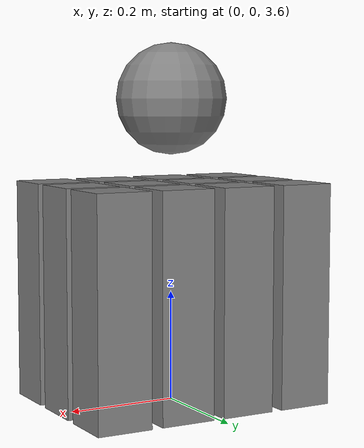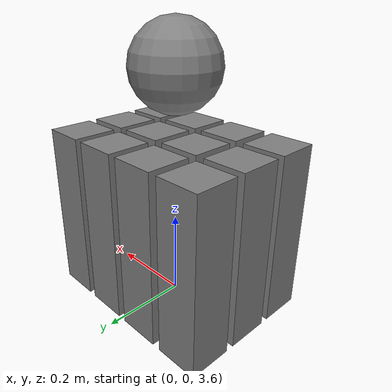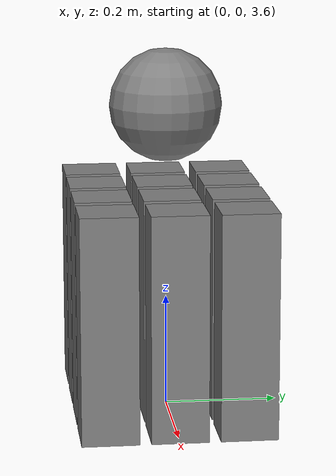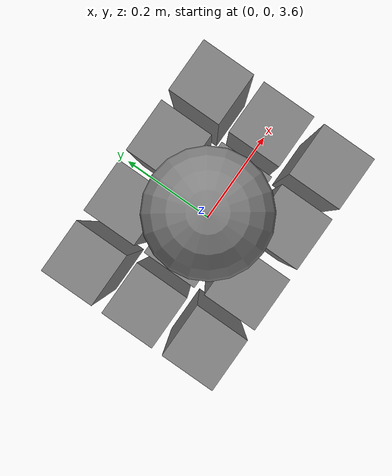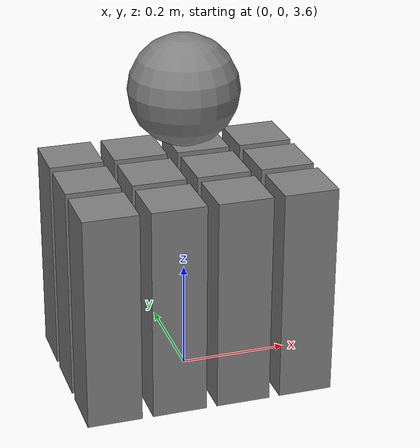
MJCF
<?xml version="1.0"?>
<mujoco model="envs/linear_actuator_array/xmls/linear_actuator_array-v0.xml">
  <option timestep="0.002" />
  <default>
    <joint limited='true' />
  </default>
  <worldbody>
    <light name="light0" directional="true" diffuse=".3 .3 .3" pos="-1 -1 1" dir="1 1 -1" />
    <light name="light1" directional="true" diffuse=".3 .3 .3" pos="1 -1 1" dir="-1 1 -1" />
    <light name="light2" directional="true" diffuse=".3 .3 .3" pos="0 1 1" dir="0 -1 -1" />
    <body name="object0" pos="0.0 0.0 4.15">
      <freejoint name="object0_joint" />
      <geom name="object0_geom" type="sphere" size="0.1" />
    </body>
    <geom name="floor" pos="0 0 0" size="5.0 5.0 .1" type="plane" condim="3" />
    <body name="palm" pos="0 0 4.0">
      <body name="module0" pos="-0.18 -0.12 0">
        <geom name="module0_geom" type="box" size="0.05" fromto="0 0 0 0 0 -0.4" />
        <joint name="module0_joint" type="slide" pos="0 0 0" axis="0 0 1" range="0 0.01" damping="10000" />
      </body>
      <body name="module1" pos="-0.18 0.0 0">
        <geom name="module1_geom" type="box" size="0.05" fromto="0 0 0 0 0 -0.4" />
        <joint name="module1_joint" type="slide" pos="0 0 0" axis="0 0 1" range="0 0.01" damping="10000" />
      </body>
      <body name="module2" pos="-0.18 0.12 0">
        <geom name="module2_geom" type="box" size="0.05" fromto="0 0 0 0 0 -0.4" />
        <joint name="module2_joint" type="slide" pos="0 0 0" axis="0 0 1" range="0 0.01" damping="10000" />
      </body>
      <body name="module3" pos="-0.06 -0.12 0">
        <geom name="module3_geom" type="box" size="0.05" fromto="0 0 0 0 0 -0.4" />
        <joint name="module3_joint" type="slide" pos="0 0 0" axis="0 0 1" range="0 0.01" damping="10000" />
      </body>
      <body name="module4" pos="-0.06 0.0 0">
        <geom name="module4_geom" type="box" size="0.05" fromto="0 0 0 0 0 -0.4" />
        <joint name="module4_joint" type="slide" pos="0 0 0" axis="0 0 1" range="0 0.01" damping="10000" />
      </body>
      <body name="module5" pos="-0.06 0.12 0">
        <geom name="module5_geom" type="box" size="0.05" fromto="0 0 0 0 0 -0.4" />
        <joint name="module5_joint" type="slide" pos="0 0 0" axis="0 0 1" range="0 0.01" damping="10000" />
      </body>
      <body name="module6" pos="0.06 -0.12 0">
        <geom name="module6_geom" type="box" size="0.05" fromto="0 0 0 0 0 -0.4" />
        <joint name="module6_joint" type="slide" pos="0 0 0" axis="0 0 1" range="0 0.01" damping="10000" />
      </body>
      <body name="module7" pos="0.06 0.0 0">
        <geom name="module7_geom" type="box" size="0.05" fromto="0 0 0 0 0 -0.4" />
        <joint name="module7_joint" type="slide" pos="0 0 0" axis="0 0 1" range="0 0.01" damping="10000" />
      </body>
      <body name="module8" pos="0.06 0.12 0">
        <geom name="module8_geom" type="box" size="0.05" fromto="0 0 0 0 0 -0.4" />
        <joint name="module8_joint" type="slide" pos="0 0 0" axis="0 0 1" range="0 0.01" damping="10000" />
      </body>
      <body name="module9" pos="0.18 -0.12 0">
        <geom name="module9_geom" type="box" size="0.05" fromto="0 0 0 0 0 -0.4" />
        <joint name="module9_joint" type="slide" pos="0 0 0" axis="0 0 1" range="0 0.01" damping="10000" />
      </body>
      <body name="module10" pos="0.18 0.0 0">
        <geom name="module10_geom" type="box" size="0.05" fromto="0 0 0 0 0 -0.4" />
        <joint name="module10_joint" type="slide" pos="0 0 0" axis="0 0 1" range="0 0.01" damping="10000" />
      </body>
      <body name="module11" pos="0.18 0.12 0">
        <geom name="module11_geom" type="box" size="0.05" fromto="0 0 0 0 0 -0.4" />
        <joint name="module11_joint" type="slide" pos="0 0 0" axis="0 0 1" range="0 0.01" damping="10000" />
      </body>
    </body>
  </worldbody>
  <actuator>
    <motor name="motor0" ctrllimited="true" ctrlrange="-1.0 1.0" gear="20000" joint="module0_joint" />
    <motor name="motor1" ctrllimited="true" ctrlrange="-1.0 1.0" gear="20000" joint="module1_joint" />
    <motor name="motor2" ctrllimited="true" ctrlrange="-1.0 1.0" gear="20000" joint="module2_joint" />
    <motor name="motor3" ctrllimited="true" ctrlrange="-1.0 1.0" gear="20000" joint="module3_joint" />
    <motor name="motor4" ctrllimited="true" ctrlrange="-1.0 1.0" gear="20000" joint="module4_joint" />
    <motor name="motor5" ctrllimited="true" ctrlrange="-1.0 1.0" gear="20000" joint="module5_joint" />
    <motor name="motor6" ctrllimited="true" ctrlrange="-1.0 1.0" gear="20000" joint="module6_joint" />
    <motor name="motor7" ctrllimited="true" ctrlrange="-1.0 1.0" gear="20000" joint="module7_joint" />
    <motor name="motor8" ctrllimited="true" ctrlrange="-1.0 1.0" gear="20000" joint="module8_joint" />
    <motor name="motor9" ctrllimited="true" ctrlrange="-1.0 1.0" gear="20000" joint="module9_joint" />
    <motor name="motor10" ctrllimited="true" ctrlrange="-1.0 1.0" gear="20000" joint="module10_joint" />
    <motor name="motor11" ctrllimited="true" ctrlrange="-1.0 1.0" gear="20000" joint="module11_joint" />
  </actuator>
</mujoco>
